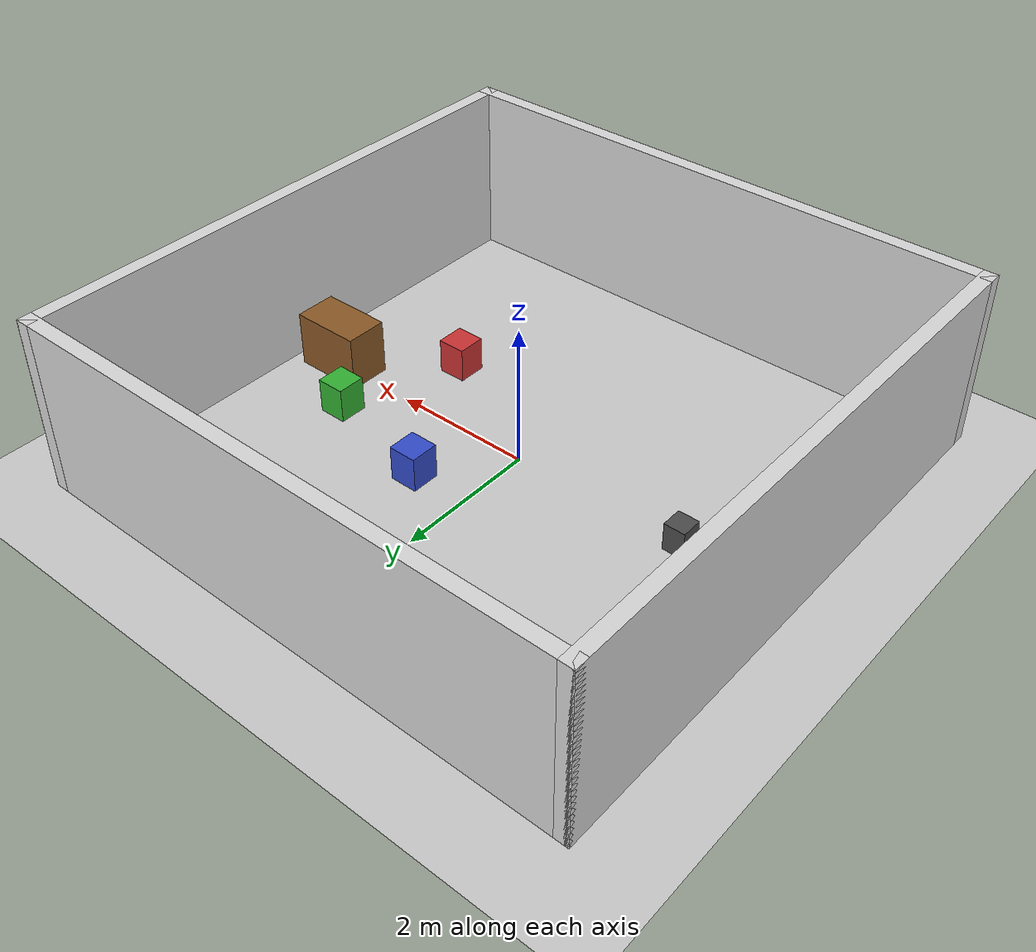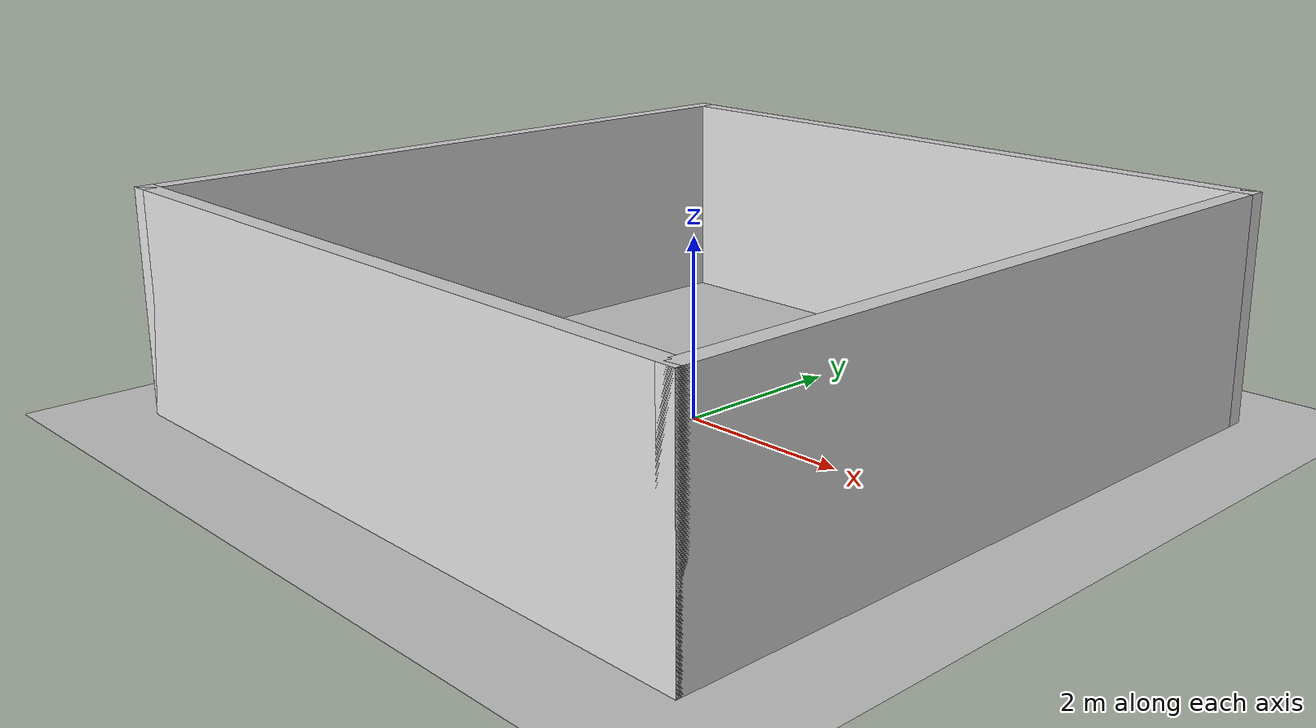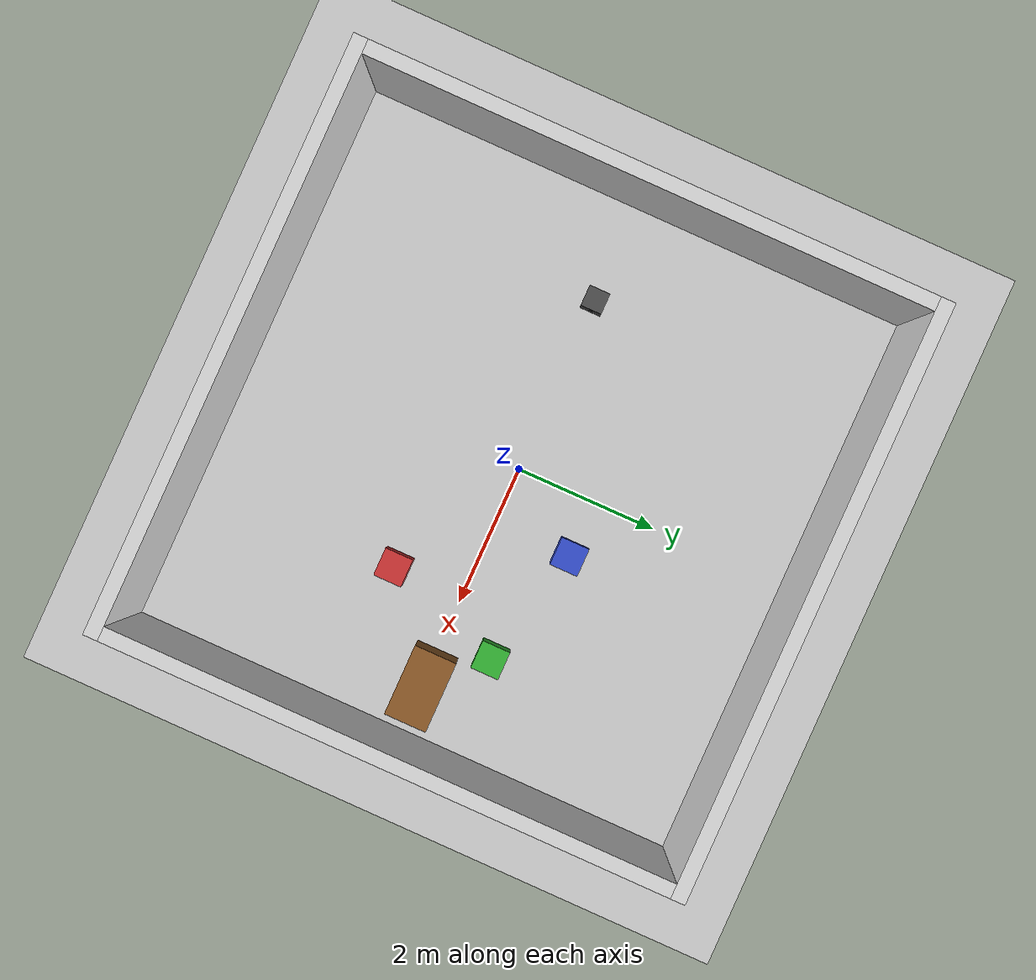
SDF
<?xml version="1.0" ?>
<sdf version="1.8">
  <world name="cafe">

    <!-- ── System plugins required by Gazebo Harmonic ─────────────────── -->
    <plugin filename="gz-sim-physics-system"
            name="gz::sim::systems::Physics"/>
    <!-- Sensors plugin drives camera rendering.
         LIBGL_ALWAYS_SOFTWARE=1 is set in the launch file so ogre2
         falls back to Mesa software rendering on CPU-only machines. -->
    <plugin filename="gz-sim-sensors-system"
            name="gz::sim::systems::Sensors">
      <render_engine>ogre2</render_engine>
    </plugin>
    <plugin filename="gz-sim-scene-broadcaster-system"
            name="gz::sim::systems::SceneBroadcaster"/>
    <plugin filename="gz-sim-user-commands-system"
            name="gz::sim::systems::UserCommands"/>

    <!-- ── Lighting ───────────────────────────────────────────────────── -->
    <light type="directional" name="sun">
      <cast_shadows>true</cast_shadows>
      <pose>0 0 10 0 0 0</pose>
      <diffuse>0.9 0.9 0.9 1</diffuse>
      <specular>0.3 0.3 0.3 1</specular>
      <direction>-0.5 0.1 -0.9</direction>
    </light>

    <!-- ── Ground plane ───────────────────────────────────────────────── -->
    <model name="ground_plane">
      <static>true</static>
      <link name="link">
        <collision name="collision">
          <geometry><plane><normal>0 0 1</normal></plane></geometry>
        </collision>
        <visual name="visual">
          <geometry>
            <plane><normal>0 0 1</normal><size>20 20</size></plane>
          </geometry>
          <material>
            <ambient>0.8 0.8 0.8 1</ambient>
            <diffuse>0.8 0.8 0.8 1</diffuse>
          </material>
        </visual>
      </link>
    </model>

    <!-- ── Room walls (8 x 8 m, 2.5 m tall) ──────────────────────────── -->
    <model name="wall_north">
      <static>true</static>
      <pose>0 4 1.25 0 0 0</pose>
      <link name="link">
        <collision name="col"><geometry><box><size>8.2 0.2 2.5</size></box></geometry></collision>
        <visual name="vis">
          <geometry><box><size>8.2 0.2 2.5</size></box></geometry>
          <material><ambient>0.85 0.85 0.85 1</ambient></material>
        </visual>
      </link>
    </model>

    <model name="wall_south">
      <static>true</static>
      <pose>0 -4 1.25 0 0 0</pose>
      <link name="link">
        <collision name="col"><geometry><box><size>8.2 0.2 2.5</size></box></geometry></collision>
        <visual name="vis">
          <geometry><box><size>8.2 0.2 2.5</size></box></geometry>
          <material><ambient>0.85 0.85 0.85 1</ambient></material>
        </visual>
      </link>
    </model>

    <model name="wall_east">
      <static>true</static>
      <pose>4 0 1.25 0 0 0</pose>
      <link name="link">
        <collision name="col"><geometry><box><size>0.2 8.2 2.5</size></box></geometry></collision>
        <visual name="vis">
          <geometry><box><size>0.2 8.2 2.5</size></box></geometry>
          <material><ambient>0.85 0.85 0.85 1</ambient></material>
        </visual>
      </link>
    </model>

    <model name="wall_west">
      <static>true</static>
      <pose>-4 0 1.25 0 0 0</pose>
      <link name="link">
        <collision name="col"><geometry><box><size>0.2 8.2 2.5</size></box></geometry></collision>
        <visual name="vis">
          <geometry><box><size>0.2 8.2 2.5</size></box></geometry>
          <material><ambient>0.85 0.85 0.85 1</ambient></material>
        </visual>
      </link>
    </model>

    <!-- ── Delivery table ─────────────────────────────────────────────── -->
    <model name="delivery_table">
      <static>true</static>
      <pose>3.2 0 0.4 0 0 0</pose>
      <link name="link">
        <collision name="col"><geometry><box><size>1.0 0.6 0.8</size></box></geometry></collision>
        <visual name="vis">
          <geometry><box><size>1.0 0.6 0.8</size></box></geometry>
          <material><ambient>0.55 0.35 0.15 1</ambient></material>
        </visual>
      </link>
    </model>

    <!-- ── Obstacles ──────────────────────────────────────────────────── -->
    <model name="obstacle_1">
      <static>true</static>
      <pose>0.8 1.1 0.25 0 0 0</pose>
      <link name="link">
        <collision name="col"><geometry><box><size>0.4 0.4 0.5</size></box></geometry></collision>
        <visual name="vis">
          <geometry><box><size>0.4 0.4 0.5</size></box></geometry>
          <material><ambient>0.2 0.3 0.8 1</ambient></material>
        </visual>
      </link>
    </model>

    <model name="obstacle_2">
      <static>true</static>
      <pose>1.9 -1.0 0.25 0 0 0</pose>
      <link name="link">
        <collision name="col"><geometry><box><size>0.4 0.4 0.5</size></box></geometry></collision>
        <visual name="vis">
          <geometry><box><size>0.4 0.4 0.5</size></box></geometry>
          <material><ambient>0.8 0.2 0.2 1</ambient></material>
        </visual>
      </link>
    </model>

    <model name="obstacle_3">
      <static>true</static>
      <pose>2.5 0.7 0.25 0 0 0</pose>
      <link name="link">
        <collision name="col"><geometry><box><size>0.4 0.4 0.5</size></box></geometry></collision>
        <visual name="vis">
          <geometry><box><size>0.4 0.4 0.5</size></box></geometry>
          <material><ambient>0.2 0.7 0.2 1</ambient></material>
        </visual>
      </link>
    </model>

    <!-- ── Robot with camera sensor ──────────────────────────────────── -->
    <model name="cafe_robot">
      <pose>-2.5 0 0 0 0 0</pose>

      <link name="base_link">
        <pose>0 0 0.2 0 0 0</pose>
        <visual name="visual">
          <geometry><box><size>0.3 0.3 0.4</size></box></geometry>
          <material>
            <ambient>0.3 0.3 0.3 1</ambient>
            <diffuse>0.3 0.3 0.3 1</diffuse>
          </material>
        </visual>
        <collision name="collision">
          <geometry><box><size>0.3 0.3 0.4</size></box></geometry>
        </collision>
        <inertial>
          <mass>5.0</mass>
          <inertia>
            <ixx>0.1042</ixx><ixy>0</ixy><ixz>0</ixz>
            <iyy>0.1042</iyy><iyz>0</iyz>
            <izz>0.075</izz>
          </inertia>
        </inertial>
      </link>

      <link name="camera_link">
        <!-- 0.15 m forward, 0.08 m above base_link centre → ~0.28 m world height -->
        <pose relative_to="base_link">0.15 0 0.08 0 0 0</pose>
        <visual name="visual">
          <geometry><box><size>0.05 0.05 0.05</size></box></geometry>
          <material><ambient>0.1 0.1 0.1 1</ambient></material>
        </visual>
        <inertial>
          <mass>0.05</mass>
          <inertia>
            <ixx>0.0000208</ixx><ixy>0</ixy><ixz>0</ixz>
            <iyy>0.0000208</iyy><iyz>0</iyz>
            <izz>0.0000208</izz>
          </inertia>
        </inertial>

        <sensor name="cafe_camera" type="camera">
          <always_on>true</always_on>
          <update_rate>5</update_rate>
          <!-- gz topic — ros_gz_bridge maps this to the ROS 2 topic -->
          <topic>/cafe/camera/image_raw</topic>
          <camera>
            <!-- ~60 degree horizontal FOV -->
            <horizontal_fov>1.047</horizontal_fov>
            <image>
              <width>224</width>
              <height>224</height>
              <format>R8G8B8</format>
            </image>
            <clip>
              <near>0.05</near>
              <far>20.0</far>
            </clip>
          </camera>
        </sensor>
      </link>

      <joint name="camera_joint" type="fixed">
        <parent>base_link</parent>
        <child>camera_link</child>
      </joint>

    </model>

  </world>
</sdf>
